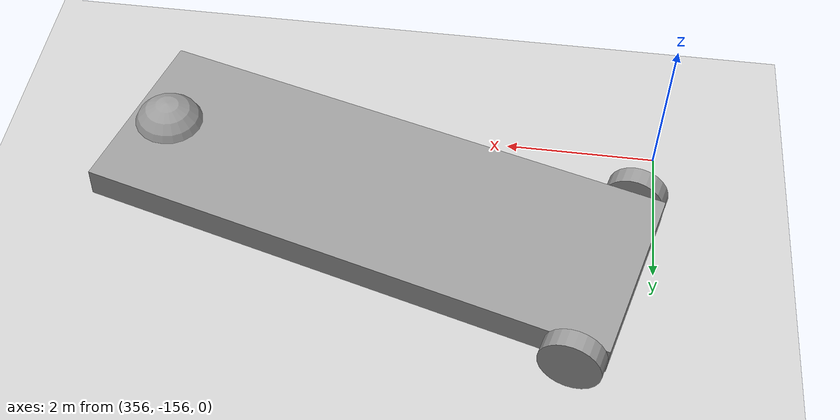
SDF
<sdf version="1.6">
 <world name="default">
  <model name="ground_plane">
   <static>1</static>
   <link name="link">
    <collision name="collision">
     <geometry><plane><normal>0 0 1</normal><size>100 100</size></plane></geometry>
     <surface>
      <contact><collide_bitmask>65535</collide_bitmask></contact>
      <friction><ode><mu>100</mu><mu2>50</mu2></ode></friction>
     </surface>
    </collision>
    <visual name="visual">
     <cast_shadows>0</cast_shadows>
     <geometry><plane><normal>0 0 1</normal><size>100 100</size></plane></geometry>
     <material>
      <script><uri>file://media/materials/scripts/gazebo.material</uri><name>Gazebo/Grey</name></script>
     </material>
    </visual>
   </link>
  </model>
  <model name="Tee-Parking-Plane-Robot">
   <link name="link_0">
    <inertial>
     <mass>1</mass>
     <inertia>
      <ixx>0.166667</ixx>
      <ixy>0</ixy>
      <ixz>0</ixz>
      <iyy>0.166667</iyy>
      <iyz>0</iyz>
      <izz>0.166667</izz>
     </inertia>
    </inertial>
    <pose>2.64381 -0.541265 0.5 0 -0 0</pose>
    <visual name="visual">
     <geometry><box><size>7 2.5 0.4</size></box></geometry>
     <material>
      <lighting>1</lighting>
      <script><uri>file://media/materials/scripts/gazebo.material</uri><name>Gazebo/Grey</name></script>
      <shader type="pixel"><normal_map>__default__</normal_map></shader>
      <ambient>0.3 0.3 0.3 1</ambient>
      <diffuse>0.7 0.7 0.7 1</diffuse>
      <specular>0.01 0.01 0.01 1</specular>
      <emissive>0 0 0 1</emissive>
     </material>
    </visual>
    <collision name="collision">
     <geometry><box><size>7 2.5 0.4</size></box></geometry>
     <surface>
      <friction>
       <ode><mu>1</mu><mu2>1</mu2><fdir1>0 0 0</fdir1><slip1>0</slip1><slip2>0</slip2></ode>
       <torsional>
        <coefficient>1</coefficient>
        <patch_radius>0</patch_radius>
        <surface_radius>0</surface_radius>
        <use_patch_radius>1</use_patch_radius>
        <ode><slip>0</slip></ode>
       </torsional>
      </friction>
      <bounce><restitution_coefficient>0</restitution_coefficient><threshold>1e+06</threshold></bounce>
      <contact>
       <collide_without_contact>0</collide_without_contact>
       <collide_without_contact_bitmask>1</collide_without_contact_bitmask>
       <collide_bitmask>1</collide_bitmask>
       <ode>
        <soft_cfm>0</soft_cfm>
        <soft_erp>0.2</soft_erp>
        <kp>1e+13</kp>
        <kd>1</kd>
        <max_vel>0.01</max_vel>
        <min_depth>0</min_depth>
       </ode>
       <bullet>
        <split_impulse>1</split_impulse>
        <split_impulse_penetration_threshold>-0.01</split_impulse_penetration_threshold>
        <soft_cfm>0</soft_cfm>
        <soft_erp>0.2</soft_erp>
        <kp>1e+13</kp>
        <kd>1</kd>
       </bullet>
      </contact>
     </surface>
    </collision>
   </link>
   <link name="link_1_clone">
    <inertial>
     <mass>1</mass>
     <inertia><ixx>0.145833</ixx><ixy>0</ixy><ixz>0</ixz><iyy>0.145833</iyy><iyz>0</iyz><izz>0.125</izz></inertia>
    </inertial>
    <pose>5.74381 -1.9163 0.5 0 -0 0</pose>
    <visual name="visual">
     <pose>0 0 0 1.5707 -0 0</pose>
     <geometry><cylinder><radius>0.4</radius><length>0.25</length></cylinder></geometry>
     <material>
      <lighting>1</lighting>
      <script><uri>file://media/materials/scripts/gazebo.material</uri><name>Gazebo/Grey</name></script>
      <shader type="pixel"><normal_map>__default__</normal_map></shader>
      <ambient>0.3 0.3 0.3 1</ambient>
      <diffuse>0.7 0.7 0.7 1</diffuse>
      <specular>0.01 0.01 0.01 1</specular>
      <emissive>0 0 0 1</emissive>
     </material>
    </visual>
    <collision name="collision">
     <pose>0 0 0 1.5707 -0 0</pose>
     <geometry><cylinder><radius>0.4</radius><length>0.25</length></cylinder></geometry>
     <surface>
      <friction>
       <ode><mu>1</mu><mu2>1</mu2><fdir1>0 0 0</fdir1><slip1>0</slip1><slip2>0</slip2></ode>
       <torsional>
        <coefficient>1</coefficient>
        <patch_radius>0</patch_radius>
        <surface_radius>0</surface_radius>
        <use_patch_radius>1</use_patch_radius>
        <ode><slip>0</slip></ode>
       </torsional>
      </friction>
      <bounce><restitution_coefficient>0</restitution_coefficient><threshold>1e+06</threshold></bounce>
      <contact>
       <collide_without_contact>0</collide_without_contact>
       <collide_without_contact_bitmask>1</collide_without_contact_bitmask>
       <collide_bitmask>1</collide_bitmask>
       <ode>
        <soft_cfm>0</soft_cfm>
        <soft_erp>0.2</soft_erp>
        <kp>1e+13</kp>
        <kd>1</kd>
        <max_vel>0.01</max_vel>
        <min_depth>0</min_depth>
       </ode>
       <bullet>
        <split_impulse>1</split_impulse>
        <split_impulse_penetration_threshold>-0.01</split_impulse_penetration_threshold>
        <soft_cfm>0</soft_cfm>
        <soft_erp>0.2</soft_erp>
        <kp>1e+13</kp>
        <kd>1</kd>
       </bullet>
      </contact>
     </surface>
    </collision>
   </link>
   <link name="link_1_clone_1">
    <inertial>
     <mass>1</mass>
     <inertia><ixx>0.145833</ixx><ixy>0</ixy><ixz>0</ixz><iyy>0.145833</iyy><iyz>0</iyz><izz>0.125</izz></inertia>
    </inertial>
    <pose>5.74381 0.833775 0.5 0 -0 0</pose>
    <visual name="visual">
     <pose>0 0 0 1.5707 -0 0</pose>
     <geometry><cylinder><radius>0.4</radius><length>0.25</length></cylinder></geometry>
     <material>
      <lighting>1</lighting>
      <script><uri>file://media/materials/scripts/gazebo.material</uri><name>Gazebo/Grey</name></script>
      <shader type="pixel"><normal_map>__default__</normal_map></shader>
      <ambient>0.3 0.3 0.3 1</ambient>
      <diffuse>0.7 0.7 0.7 1</diffuse>
      <specular>0.01 0.01 0.01 1</specular>
      <emissive>0 0 0 1</emissive>
     </material>
    </visual>
    <collision name="collision">
     <pose>0 0 0 1.5707 -0 0</pose>
     <geometry><cylinder><radius>0.4</radius><length>0.25</length></cylinder></geometry>
     <surface>
      <friction>
       <ode><mu>1</mu><mu2>1</mu2><fdir1>0 0 0</fdir1><slip1>0</slip1><slip2>0</slip2></ode>
       <torsional>
        <coefficient>1</coefficient>
        <patch_radius>0</patch_radius>
        <surface_radius>0</surface_radius>
        <use_patch_radius>1</use_patch_radius>
        <ode><slip>0</slip></ode>
       </torsional>
      </friction>
      <bounce><restitution_coefficient>0</restitution_coefficient><threshold>1e+06</threshold></bounce>
      <contact>
       <collide_without_contact>0</collide_without_contact>
       <collide_without_contact_bitmask>1</collide_without_contact_bitmask>
       <collide_bitmask>1</collide_bitmask>
       <ode>
        <soft_cfm>0</soft_cfm>
        <soft_erp>0.2</soft_erp>
        <kp>1e+13</kp>
        <kd>1</kd>
        <max_vel>0.01</max_vel>
        <min_depth>0</min_depth>
       </ode>
       <bullet>
        <split_impulse>1</split_impulse>
        <split_impulse_penetration_threshold>-0.01</split_impulse_penetration_threshold>
        <soft_cfm>0</soft_cfm>
        <soft_erp>0.2</soft_erp>
        <kp>1e+13</kp>
        <kd>1</kd>
       </bullet>
      </contact>
     </surface>
    </collision>
   </link>
   <link name="link_2">
    <inertial>
     <mass>1</mass>
     <inertia><ixx>0.1</ixx><ixy>0</ixy><ixz>0</ixz><iyy>0.1</iyy><iyz>0</iyz><izz>0.1</izz></inertia>
    </inertial>
    <pose>-0.356192 -0.541264 0.5 0 -0 0</pose>
    <visual name="visual">
     <geometry><sphere><radius>0.5</radius></sphere></geometry>
     <material>
      <lighting>1</lighting>
      <script><uri>file://media/materials/scripts/gazebo.material</uri><name>Gazebo/Grey</name></script>
      <shader type="pixel"/>
      <emissive>0 0 0 1</emissive>
     </material>
    </visual>
    <collision name="collision">
     <geometry><sphere><radius>0.5</radius></sphere></geometry>
     <surface>
      <friction>
       <ode><mu>1</mu><mu2>1</mu2><fdir1>0 0 0</fdir1><slip1>0</slip1><slip2>0</slip2></ode>
       <torsional>
        <coefficient>1</coefficient>
        <patch_radius>0</patch_radius>
        <surface_radius>0</surface_radius>
        <use_patch_radius>1</use_patch_radius>
        <ode><slip>0</slip></ode>
       </torsional>
      </friction>
      <bounce><restitution_coefficient>0</restitution_coefficient><threshold>1e+06</threshold></bounce>
      <contact>
       <collide_without_contact>0</collide_without_contact>
       <collide_without_contact_bitmask>1</collide_without_contact_bitmask>
       <collide_bitmask>1</collide_bitmask>
       <ode>
        <soft_cfm>0</soft_cfm>
        <soft_erp>0.2</soft_erp>
        <kp>1e+13</kp>
        <kd>1</kd>
        <max_vel>0.01</max_vel>
        <min_depth>0</min_depth>
       </ode>
       <bullet>
        <split_impulse>1</split_impulse>
        <split_impulse_penetration_threshold>-0.01</split_impulse_penetration_threshold>
        <soft_cfm>0</soft_cfm>
        <soft_erp>0.2</soft_erp>
        <kp>1e+13</kp>
        <kd>1</kd>
       </bullet>
      </contact>
     </surface>
    </collision>
   </link>
   <joint name="link_0_JOINT_1" type="revolute">
    <parent>link_0</parent>
    <child>link_1_clone_1</child>
    <axis>
     <xyz>-0 -1 -0</xyz>
     <use_parent_model_frame>0</use_parent_model_frame>
     <limit>
      <lower>-1.79769e+308</lower>
      <upper>1.79769e+308</upper>
      <effort>-1</effort>
      <velocity>-1</velocity>
     </limit>
     <dynamics>
      <spring_reference>0</spring_reference>
      <spring_stiffness>0</spring_stiffness>
      <damping>0</damping>
      <friction>0</friction>
     </dynamics>
    </axis>
    <physics>
     <ode><limit><cfm>0</cfm><erp>0.2</erp></limit><suspension><cfm>0</cfm><erp>0.2</erp></suspension></ode>
    </physics>
   </joint>
   <joint name="link_0_JOINT_2" type="revolute">
    <parent>link_0</parent>
    <child>link_1_clone</child>
    <axis>
     <xyz>-0 -1 -0</xyz>
     <use_parent_model_frame>0</use_parent_model_frame>
     <limit>
      <lower>-1.79769e+308</lower>
      <upper>1.79769e+308</upper>
      <effort>-1</effort>
      <velocity>-1</velocity>
     </limit>
     <dynamics>
      <spring_reference>0</spring_reference>
      <spring_stiffness>0</spring_stiffness>
      <damping>0</damping>
      <friction>0</friction>
     </dynamics>
    </axis>
    <physics>
     <ode><limit><cfm>0</cfm><erp>0.2</erp></limit><suspension><cfm>0</cfm><erp>0.2</erp></suspension></ode>
    </physics>
   </joint>
   <joint name="link_2_JOINT_3" type="ball">
    <parent>link_0</parent>
    <child>link_2</child>
    <physics>
     <ode><limit><cfm>0</cfm><erp>0.2</erp></limit><suspension><cfm>0</cfm><erp>0.2</erp></suspension></ode>
    </physics>
   </joint>
   <static>0</static>
   <pose>362.058 -155.643 -0.005772 0 0.016394 2.87847</pose>
  </model>
 </world>
</sdf>
